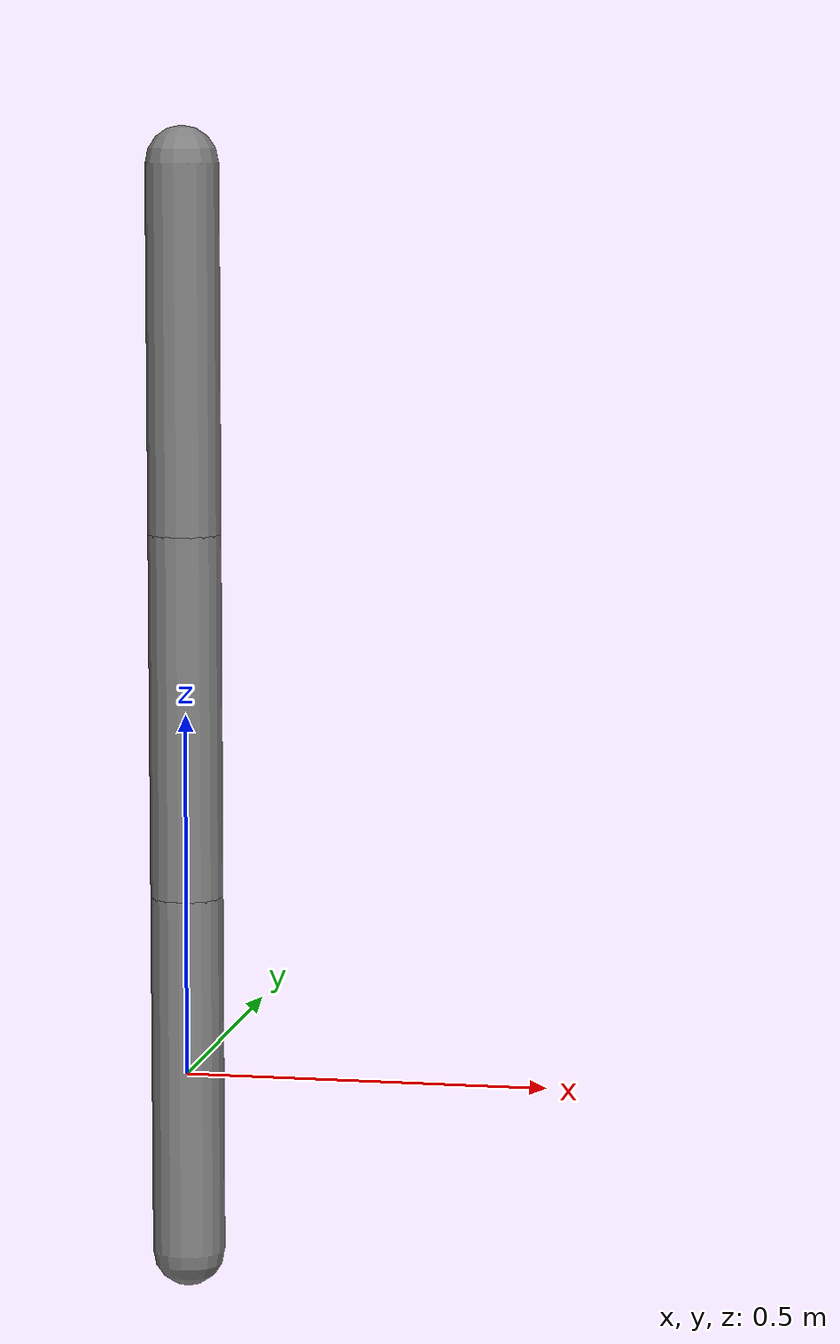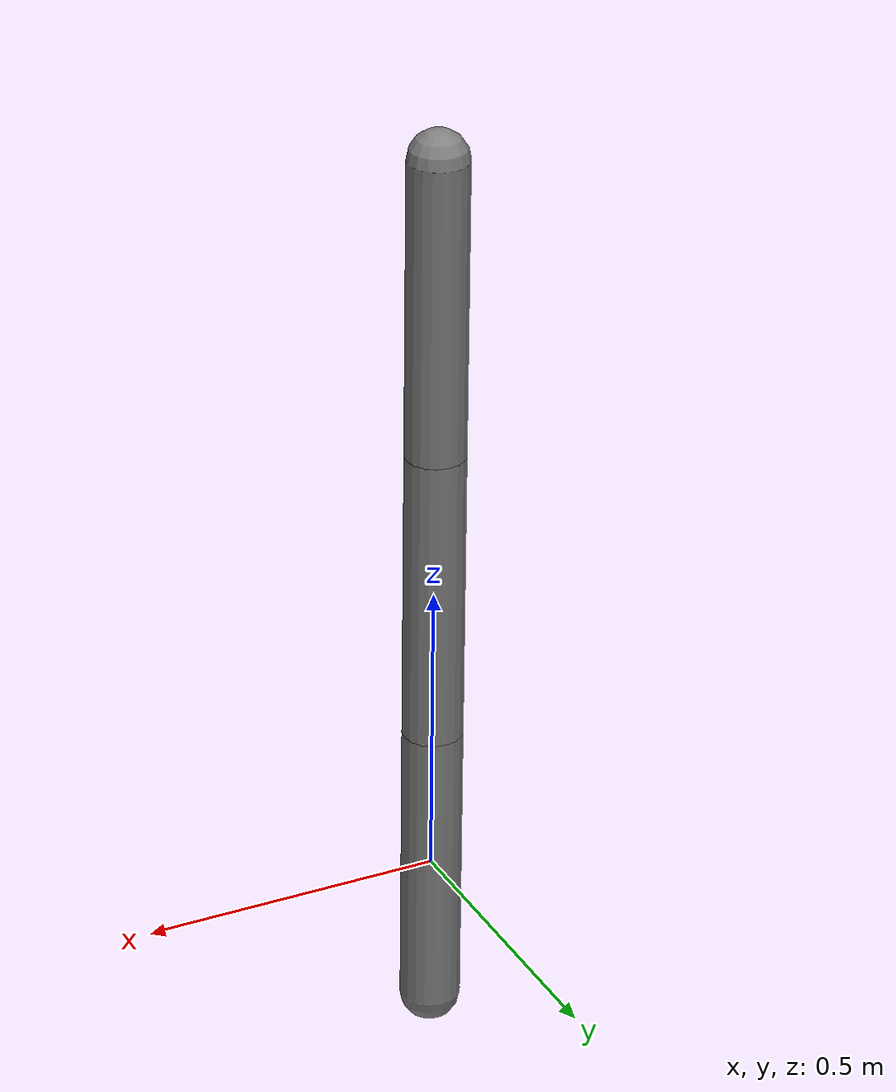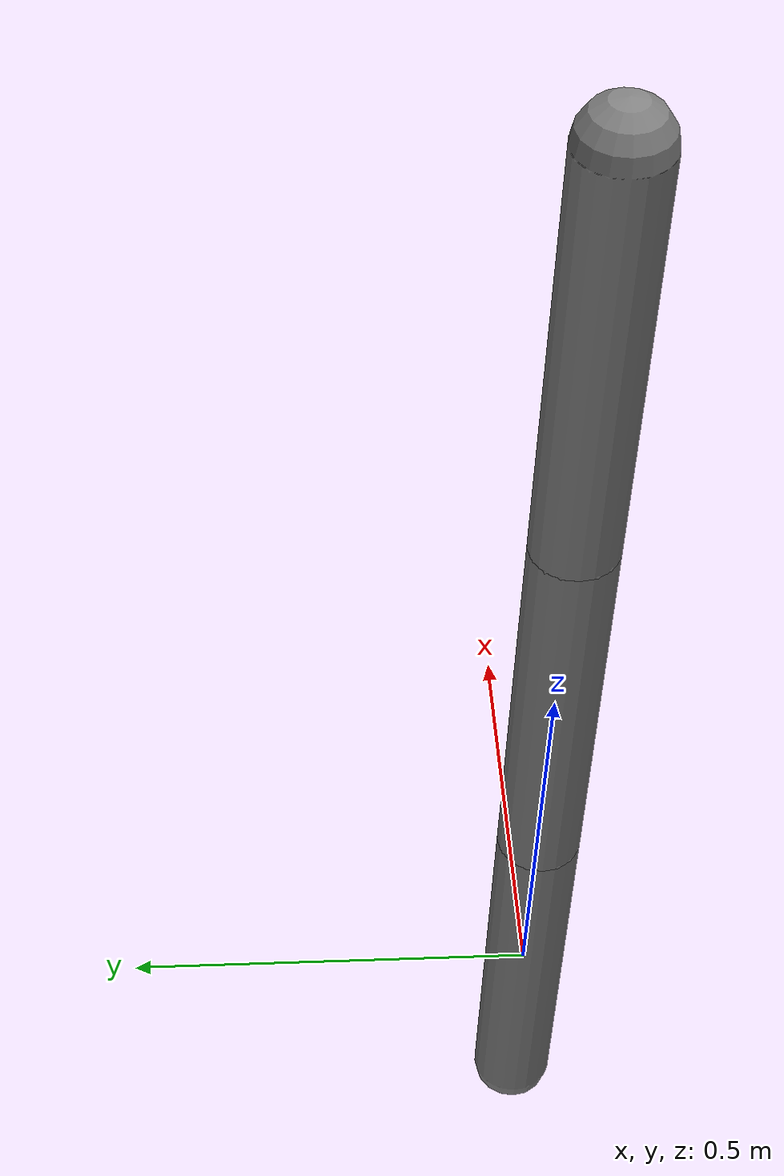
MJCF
<mujoco>
      <option gravity="0 0 -9.81"/>
      <worldbody>
        <body name="link1" pos="0 0 1">
          <joint name="j1" type="hinge" axis="0 1 0"/>
          <geom type="capsule" size="0.05 0.25" mass="1.0"/>
          <site name="ft1" pos="0 0 0"/>
          <body name="link2" pos="0 0 -0.5">
            <joint name="j2" type="hinge" axis="0 1 0"/>
            <geom type="capsule" size="0.05 0.25" mass="1.0"/>
            <site name="ft2" pos="0 0 0"/>
            <body name="link3" pos="0 0 -0.5">
              <joint name="j3" type="hinge" axis="0 1 0"/>
              <geom type="capsule" size="0.05 0.25" mass="1.0"/>
              <site name="ft3" pos="0 0 0"/>
            </body>
          </body>
        </body>
      </worldbody>
      <sensor>
        <force site="ft1"/>
        <force site="ft2"/>
        <force site="ft3"/>
      </sensor>
    </mujoco>
